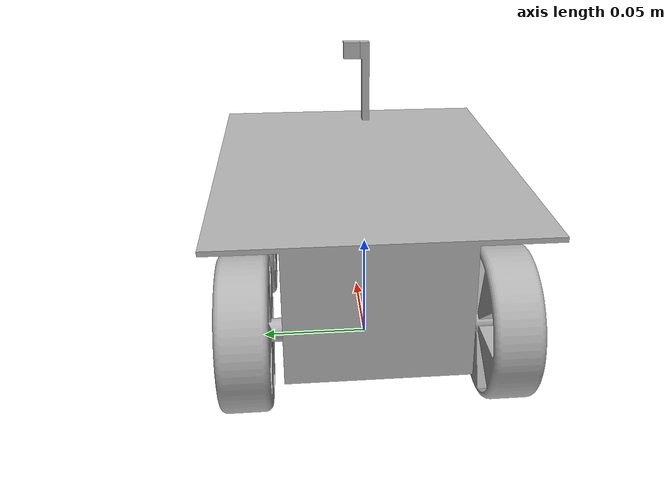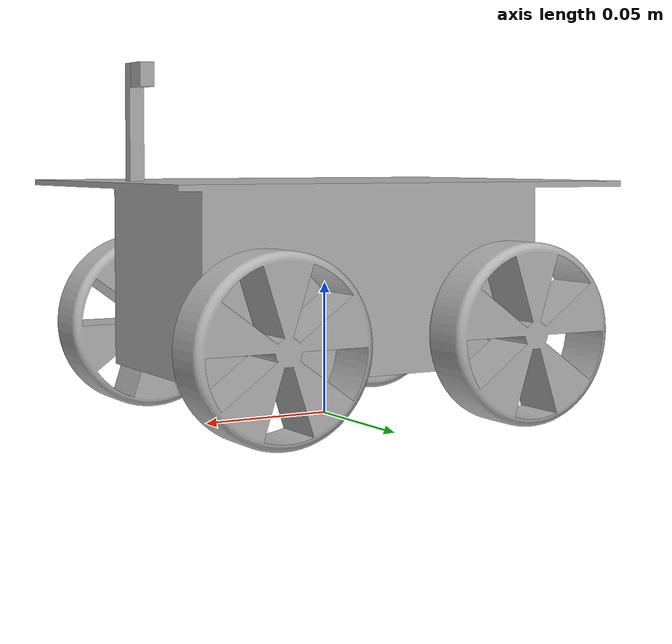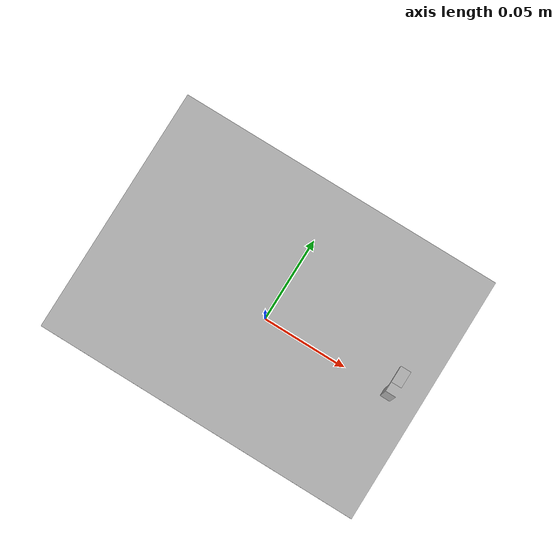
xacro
<?xml version="1.0" ?>
<robot name="ATRO2_model" xmlns:xacro="http://www.ros.org/wiki/xacro">

  <link name="base_link">
  <xacro:include filename="$(find atro2_description)/urdf/materials.xacro" />
  <xacro:include filename="$(find atro2_description)/urdf/ATRO2_model.trans" />
  <xacro:include filename="$(find atro2_description)/urdf/ATRO2_model.gazebo" />
    <inertial>
      <origin xyz="0.00021942589051527798 -8.961847857435687e-06 0.05531572461065001" rpy="0 0 0"/>
      <mass value="2.1494931274835305"/>
      <inertia ixx="0.002182" iyy="0.004578" izz="0.004879" ixy="1e-06" iyz="1e-06" ixz="-2e-05"/>
    </inertial>
    <visual>
      <origin xyz="0 0 0" rpy="0 0 0"/>
      <geometry>
        <mesh filename="package://atro2_description/meshes/base_link.stl" scale="0.001 0.001 0.001"/>
      </geometry>
      <material name="silver"/>
    </visual>
    <collision>
      <origin xyz="0 0 0" rpy="0 0 0"/>
      <geometry>
        <mesh filename="package://atro2_description/meshes/base_link.stl" scale="0.001 0.001 0.001"/>
      </geometry>
    </collision>
  </link>

  <link name="front_left_wheel__1__1">
    <inertial>
      <origin xyz="1.5827738644030864e-07 0.01563385253415052 3.3608041528215837e-07" rpy="0 0 0"/>
      <mass value="0.04751471324293791"/>
      <inertia ixx="1.6e-05" iyy="2.9e-05" izz="1.6e-05" ixy="0.0" iyz="0.0" ixz="0.0"/>
    </inertial>
    <visual>
      <origin xyz="-0.05075 -0.03925 -0.0335" rpy="0 0 0"/>
      <geometry>
        <mesh filename="package://atro2_description/meshes/front_left_wheel__1__1.stl" scale="0.001 0.001 0.001"/>
      </geometry>
      <material name="silver"/>
    </visual>
    <collision>
      <origin xyz="-0.05075 -0.03925 -0.0335" rpy="0 0 0"/>
      <geometry>
        <mesh filename="package://atro2_description/meshes/front_left_wheel__1__1.stl" scale="0.001 0.001 0.001"/>
      </geometry>
    </collision>
  </link>

  <link name="back_left_wheel_1">
    <inertial>
      <origin xyz="1.582773865929643e-07 0.015633852534150054 3.3608041487276363e-07" rpy="0 0 0"/>
      <mass value="0.04751471324293791"/>
      <inertia ixx="1.6e-05" iyy="2.9e-05" izz="1.6e-05" ixy="0.0" iyz="0.0" ixz="-0.0"/>
    </inertial>
    <visual>
      <origin xyz="0.05075 -0.03925 -0.0335" rpy="0 0 0"/>
      <geometry>
        <mesh filename="package://atro2_description/meshes/back_left_wheel_1.stl" scale="0.001 0.001 0.001"/>
      </geometry>
      <material name="silver"/>
    </visual>
    <collision>
      <origin xyz="0.05075 -0.03925 -0.0335" rpy="0 0 0"/>
      <geometry>
        <mesh filename="package://atro2_description/meshes/back_left_wheel_1.stl" scale="0.001 0.001 0.001"/>
      </geometry>
    </collision>
  </link>

  <link name="back_right_wheel_1">
    <inertial>
      <origin xyz="1.582773784120084e-07 -0.015633989541450066 3.36080365537228e-07" rpy="0 0 0"/>
      <mass value="0.0475147132429379"/>
      <inertia ixx="1.6e-05" iyy="2.9e-05" izz="1.6e-05" ixy="0.0" iyz="0.0" ixz="0.0"/>
    </inertial>
    <visual>
      <origin xyz="0.05075 0.03925 -0.0335" rpy="0 0 0"/>
      <geometry>
        <mesh filename="package://atro2_description/meshes/back_right_wheel_1.stl" scale="0.001 0.001 0.001"/>
      </geometry>
      <material name="silver"/>
    </visual>
    <collision>
      <origin xyz="0.05075 0.03925 -0.0335" rpy="0 0 0"/>
      <geometry>
        <mesh filename="package://atro2_description/meshes/back_right_wheel_1.stl" scale="0.001 0.001 0.001"/>
      </geometry>
    </collision>
  </link>

  <link name="front_right_wheel_1">
    <inertial>
      <origin xyz="1.5827737812057485e-07 -0.015633989541450066 3.3608036566212807e-07" rpy="0 0 0"/>
      <mass value="0.04751471324293792"/>
      <inertia ixx="1.6e-05" iyy="2.9e-05" izz="1.6e-05" ixy="0.0" iyz="0.0" ixz="0.0"/>
    </inertial>
    <visual>
      <origin xyz="-0.05075 0.03925 -0.0335" rpy="0 0 0"/>
      <geometry>
        <mesh filename="package://atro2_description/meshes/front_right_wheel_1.stl" scale="0.001 0.001 0.001"/>
      </geometry>
      <material name="silver"/>
    </visual>
    <collision>
      <origin xyz="-0.05075 0.03925 -0.0335" rpy="0 0 0"/>
      <geometry>
        <mesh filename="package://atro2_description/meshes/front_right_wheel_1.stl" scale="0.001 0.001 0.001"/>
      </geometry>
    </collision>
  </link>

  <link name="camera_1">
    <inertial>
      <origin xyz="1.5827738633622523e-07 0.004349931496348426 3.3608041305477343e-07" rpy="0 0 0"/>
      <mass value="0.0004412727000000003"/>
      <inertia ixx="0.0" iyy="0.0" izz="0.0" ixy="-0.0" iyz="-0.0" ixz="-0.0"/>
    </inertial>
    <visual>
      <origin xyz="-0.0745 0.00435 -0.1271" rpy="0 0 0"/>
      <geometry>
        <mesh filename="package://atro2_description/meshes/camera_1.stl" scale="0.001 0.001 0.001"/>
      </geometry>
      <material name="silver"/>
    </visual>
    <collision>
      <origin xyz="-0.0745 0.00435 -0.1271" rpy="0 0 0"/>
      <geometry>
        <mesh filename="package://atro2_description/meshes/camera_1.stl" scale="0.001 0.001 0.001"/>
      </geometry>
    </collision>
  </link>

  <joint name="Rev1" type="continuous">
    <origin xyz="0.05075 0.03925 0.0335" rpy="0 0 0"/>
    <parent link="base_link"/>
    <child link="front_left_wheel__1__1"/>
    <axis xyz="0.0 -1.0 -0.0"/>
  </joint>

  <joint name="Rev2" type="continuous">
    <origin xyz="-0.05075 0.03925 0.0335" rpy="0 0 0"/>
    <parent link="base_link"/>
    <child link="back_left_wheel_1"/>
    <axis xyz="0.0 -1.0 -0.0"/>
  </joint>

  <joint name="Rev3" type="continuous">
    <origin xyz="-0.05075 -0.03925 0.0335" rpy="0 0 0"/>
    <parent link="base_link"/>
    <child link="back_right_wheel_1"/>
    <axis xyz="0.0 1.0 0.0"/>
  </joint>

  <joint name="Rev4" type="continuous">
    <origin xyz="0.05075 -0.03925 0.0335" rpy="0 0 0"/>
    <parent link="base_link"/>
    <child link="front_right_wheel_1"/>
    <axis xyz="0.0 1.0 0.0"/>
  </joint>

  <joint name="Rev7" type="continuous">
    <origin xyz="0.0745 -0.00435 0.1271" rpy="0 0 0"/>
    <parent link="base_link"/>
    <child link="camera_1"/>
    <axis xyz="-0.0 1.0 0.0"/>
  </joint>

</robot>

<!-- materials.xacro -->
<robot name="ATRO2_model" xmlns:xacro="http://www.ros.org/wiki/xacro" >

  <material name="silver">
    <color rgba="0.700 0.700 0.700 1.000"/>
  </material>

</robot>

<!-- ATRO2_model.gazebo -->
<robot name="ATRO2_model" xmlns:xacro="http://www.ros.org/wiki/xacro" >

  <xacro:property name="body_color" value="Gazebo/Silver" />

  <gazebo>
    <plugin name="control" filename="libgazebo_ros_control.so"/>
  </gazebo>
  <gazebo reference="base_link">
    <material>${body_color}</material>
    <mu1>0.2</mu1>
    <mu2>0.2</mu2>
    <selfCollide>true</selfCollide>
    <gravity>true</gravity>
  </gazebo>

  <gazebo reference="front_left_wheel__1__1">
    <material>${body_color}</material>
    <mu1>0.2</mu1>
    <mu2>0.2</mu2>
    <selfCollide>true</selfCollide>
  </gazebo>

  <gazebo reference="back_left_wheel_1">
    <material>${body_color}</material>
    <mu1>0.2</mu1>
    <mu2>0.2</mu2>
    <selfCollide>true</selfCollide>
  </gazebo>

  <gazebo reference="back_right_wheel_1">
    <material>${body_color}</material>
    <mu1>0.2</mu1>
    <mu2>0.2</mu2>
    <selfCollide>true</selfCollide>
  </gazebo>

  <gazebo reference="front_right_wheel_1">
    <material>${body_color}</material>
    <mu1>0.2</mu1>
    <mu2>0.2</mu2>
    <selfCollide>true</selfCollide>
  </gazebo>

  <gazebo reference="camera_1">
    <material>${body_color}</material>
    <mu1>0.2</mu1>
    <mu2>0.2</mu2>
    <selfCollide>true</selfCollide>
  </gazebo>

</robot>
